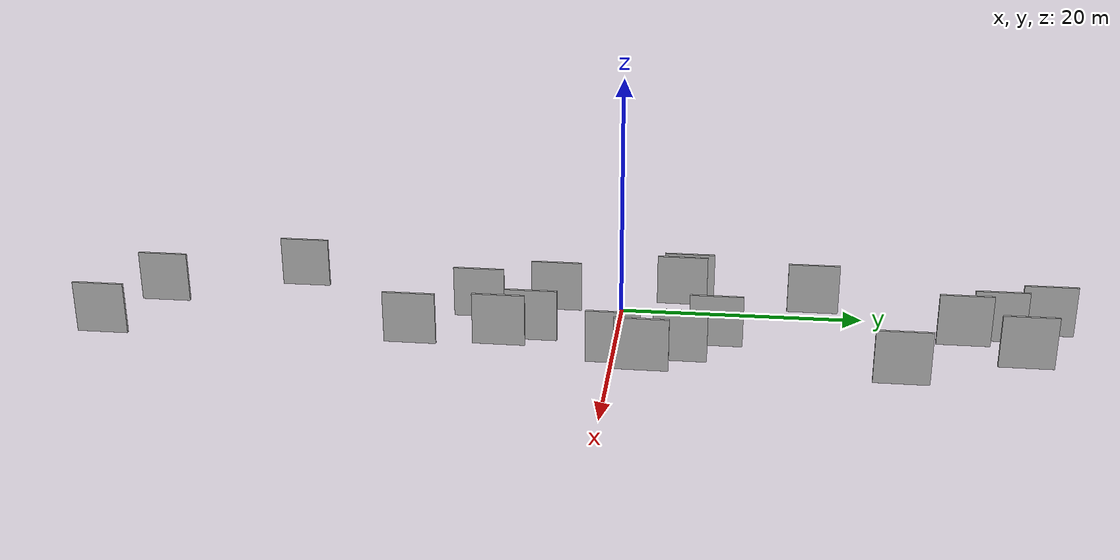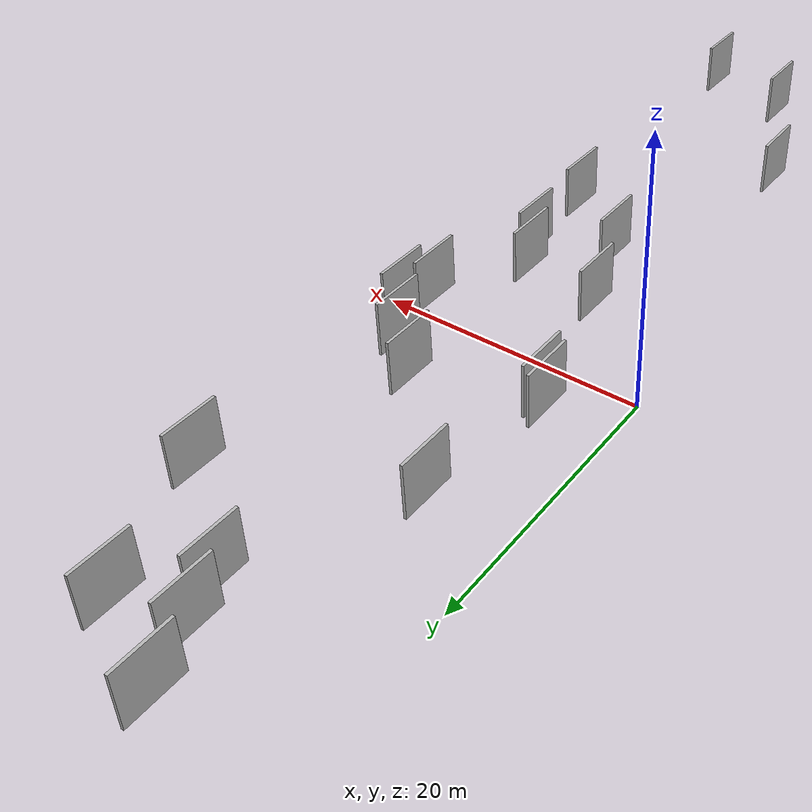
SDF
<sdf version="1.6">
 <world name="default">
  <scene>
   <sky><clouds><speed>12</speed></clouds></sky>
   <ambient>0.4 0.4 0.4 1</ambient>
   <background>0.7 0.7 0.7 1</background>
   <shadows>1</shadows>
  </scene>
  <gravity>0 0 -9.8066</gravity>
  <magnetic_field>6e-06 2.3e-05 -4.2e-05</magnetic_field>
  <physics default="0" name="default_physics" type="ode">
   <ode>
    <solver>
     <type>quick</type>
     <iters>10</iters>
     <sor>1.0</sor>
     <use_dynamic_moi_rescaling>0</use_dynamic_moi_rescaling>
    </solver>
    <constraints>
     <cfm>0</cfm>
     <erp>0.2</erp>
     <contact_max_correcting_vel>100</contact_max_correcting_vel>
     <contact_surface_layer>0.001</contact_surface_layer>
    </constraints>
   </ode>
   <max_step_size>0.004</max_step_size>
   <real_time_factor>1</real_time_factor>
   <real_time_update_rate>250</real_time_update_rate>
  </physics>
  <light name="sun" type="directional">
   <pose>0 0 10 0 0 0</pose>
   <diffuse>0.8 0.8 0.8 1</diffuse>
   <specular>0.2 0.2 0.2 1</specular>
   <attenuation>
    <range>1000</range>
    <constant>0.9</constant>
    <linear>0.01</linear>
    <quadratic>0.001</quadratic>
   </attenuation>
   <direction>-0.5 0.1 -0.9</direction>
  </light>
  <model name="grey_wall_1">
   <static>1</static>
   <pose>7.8780 -36.6778 2.5 0.000000 0.000000 1.570796</pose>
   <link name="link">
    <pose>0 0 2.00 0 0 0</pose>
    <collision name="collision"><geometry><box><size>4.00 0.2 4.00</size></box></geometry></collision>
    <visual name="visual">
     <cast_shadows>0</cast_shadows>
     <geometry><box><size>4.00 0.2 4.00</size></box></geometry>
     <material>
      <script>
       <uri>model://HANNAS_wall/materials/scripts</uri>
       <uri>model://HANNAS_wall/materials/textures</uri>
       <name>vrc/HANNAS_wall</name>
      </script>
     </material>
    </visual>
   </link>
  </model>
  <model name="grey_wall_2">
   <static>1</static>
   <pose>8.4785 29.3045 2.5 0.000000 0.000000 1.570796</pose>
   <link name="link">
    <pose>0 0 2.00 0 0 0</pose>
    <collision name="collision"><geometry><box><size>4.00 0.2 4.00</size></box></geometry></collision>
    <visual name="visual">
     <cast_shadows>0</cast_shadows>
     <geometry><box><size>4.00 0.2 4.00</size></box></geometry>
     <material>
      <script>
       <uri>model://HANNAS_wall/materials/scripts</uri>
       <uri>model://HANNAS_wall/materials/textures</uri>
       <name>vrc/HANNAS_wall</name>
      </script>
     </material>
    </visual>
   </link>
  </model>
  <model name="grey_wall_3">
   <static>1</static>
   <pose>3.3536 -26.2897 2.5 0.000000 0.000000 1.570796</pose>
   <link name="link">
    <pose>0 0 2.00 0 0 0</pose>
    <collision name="collision"><geometry><box><size>4.00 0.2 4.00</size></box></geometry></collision>
    <visual name="visual">
     <cast_shadows>0</cast_shadows>
     <geometry><box><size>4.00 0.2 4.00</size></box></geometry>
     <material>
      <script>
       <uri>model://HANNAS_wall/materials/scripts</uri>
       <uri>model://HANNAS_wall/materials/textures</uri>
       <name>vrc/HANNAS_wall</name>
      </script>
     </material>
    </visual>
   </link>
  </model>
  <model name="grey_wall_4">
   <static>1</static>
   <pose>14.6330 -38.9735 2.5 0.000000 0.000000 1.570796</pose>
   <link name="link">
    <pose>0 0 2.00 0 0 0</pose>
    <collision name="collision"><geometry><box><size>4.00 0.2 4.00</size></box></geometry></collision>
    <visual name="visual">
     <cast_shadows>0</cast_shadows>
     <geometry><box><size>4.00 0.2 4.00</size></box></geometry>
     <material>
      <script>
       <uri>model://HANNAS_wall/materials/scripts</uri>
       <uri>model://HANNAS_wall/materials/textures</uri>
       <name>vrc/HANNAS_wall</name>
      </script>
     </material>
    </visual>
   </link>
  </model>
  <model name="grey_wall_5">
   <static>1</static>
   <pose>9.5337 26.5299 2.5 0.000000 0.000000 1.570796</pose>
   <link name="link">
    <pose>0 0 2.00 0 0 0</pose>
    <collision name="collision"><geometry><box><size>4.00 0.2 4.00</size></box></geometry></collision>
    <visual name="visual">
     <cast_shadows>0</cast_shadows>
     <geometry><box><size>4.00 0.2 4.00</size></box></geometry>
     <material>
      <script>
       <uri>model://HANNAS_wall/materials/scripts</uri>
       <uri>model://HANNAS_wall/materials/textures</uri>
       <name>vrc/HANNAS_wall</name>
      </script>
     </material>
    </visual>
   </link>
  </model>
  <model name="grey_wall_6">
   <static>1</static>
   <pose>15.6037 0.5643 2.5 0.000000 0.000000 1.570796</pose>
   <link name="link">
    <pose>0 0 2.00 0 0 0</pose>
    <collision name="collision"><geometry><box><size>4.00 0.2 4.00</size></box></geometry></collision>
    <visual name="visual">
     <cast_shadows>0</cast_shadows>
     <geometry><box><size>4.00 0.2 4.00</size></box></geometry>
     <material>
      <script>
       <uri>model://HANNAS_wall/materials/scripts</uri>
       <uri>model://HANNAS_wall/materials/textures</uri>
       <name>vrc/HANNAS_wall</name>
      </script>
     </material>
    </visual>
   </link>
  </model>
  <model name="grey_wall_7">
   <static>1</static>
   <pose>14.7422 5.4125 2.5 0.000000 0.000000 1.570796</pose>
   <link name="link">
    <pose>0 0 2.00 0 0 0</pose>
    <collision name="collision"><geometry><box><size>4.00 0.2 4.00</size></box></geometry></collision>
    <visual name="visual">
     <cast_shadows>0</cast_shadows>
     <geometry><box><size>4.00 0.2 4.00</size></box></geometry>
     <material>
      <script>
       <uri>model://HANNAS_wall/materials/scripts</uri>
       <uri>model://HANNAS_wall/materials/textures</uri>
       <name>vrc/HANNAS_wall</name>
      </script>
     </material>
    </visual>
   </link>
  </model>
  <model name="grey_wall_8">
   <static>1</static>
   <pose>13.8355 -14.9823 2.5 0.000000 0.000000 1.570796</pose>
   <link name="link">
    <pose>0 0 2.00 0 0 0</pose>
    <collision name="collision"><geometry><box><size>4.00 0.2 4.00</size></box></geometry></collision>
    <visual name="visual">
     <cast_shadows>0</cast_shadows>
     <geometry><box><size>4.00 0.2 4.00</size></box></geometry>
     <material>
      <script>
       <uri>model://HANNAS_wall/materials/scripts</uri>
       <uri>model://HANNAS_wall/materials/textures</uri>
       <name>vrc/HANNAS_wall</name>
      </script>
     </material>
    </visual>
   </link>
  </model>
  <model name="grey_wall_9">
   <static>1</static>
   <pose>4.5063 15.5666 2.5 0.000000 0.000000 1.570796</pose>
   <link name="link">
    <pose>0 0 2.00 0 0 0</pose>
    <collision name="collision"><geometry><box><size>4.00 0.2 4.00</size></box></geometry></collision>
    <visual name="visual">
     <cast_shadows>0</cast_shadows>
     <geometry><box><size>4.00 0.2 4.00</size></box></geometry>
     <material>
      <script>
       <uri>model://HANNAS_wall/materials/scripts</uri>
       <uri>model://HANNAS_wall/materials/textures</uri>
       <name>vrc/HANNAS_wall</name>
      </script>
     </material>
    </visual>
   </link>
  </model>
  <model name="grey_wall_10">
   <static>1</static>
   <pose>13.3845 -8.2456 2.5 0.000000 0.000000 1.570796</pose>
   <link name="link">
    <pose>0 0 2.00 0 0 0</pose>
    <collision name="collision"><geometry><box><size>4.00 0.2 4.00</size></box></geometry></collision>
    <visual name="visual">
     <cast_shadows>0</cast_shadows>
     <geometry><box><size>4.00 0.2 4.00</size></box></geometry>
     <material>
      <script>
       <uri>model://HANNAS_wall/materials/scripts</uri>
       <uri>model://HANNAS_wall/materials/textures</uri>
       <name>vrc/HANNAS_wall</name>
      </script>
     </material>
    </visual>
   </link>
  </model>
  <model name="grey_wall_11">
   <static>1</static>
   <pose>8.2481 -10.6515 2.5 0.000000 0.000000 1.570796</pose>
   <link name="link">
    <pose>0 0 2.00 0 0 0</pose>
    <collision name="collision"><geometry><box><size>4.00 0.2 4.00</size></box></geometry></collision>
    <visual name="visual">
     <cast_shadows>0</cast_shadows>
     <geometry><box><size>4.00 0.2 4.00</size></box></geometry>
     <material>
      <script>
       <uri>model://HANNAS_wall/materials/scripts</uri>
       <uri>model://HANNAS_wall/materials/textures</uri>
       <name>vrc/HANNAS_wall</name>
      </script>
     </material>
    </visual>
   </link>
  </model>
  <model name="grey_wall_12">
   <static>1</static>
   <pose>6.9784 33.1511 2.5 0.000000 0.000000 1.570796</pose>
   <link name="link">
    <pose>0 0 2.00 0 0 0</pose>
    <collision name="collision"><geometry><box><size>4.00 0.2 4.00</size></box></geometry></collision>
    <visual name="visual">
     <cast_shadows>0</cast_shadows>
     <geometry><box><size>4.00 0.2 4.00</size></box></geometry>
     <material>
      <script>
       <uri>model://HANNAS_wall/materials/scripts</uri>
       <uri>model://HANNAS_wall/materials/textures</uri>
       <name>vrc/HANNAS_wall</name>
      </script>
     </material>
    </visual>
   </link>
  </model>
  <model name="grey_wall_13">
   <static>1</static>
   <pose>12.2420 -5.9573 2.5 0.000000 0.000000 1.570796</pose>
   <link name="link">
    <pose>0 0 2.00 0 0 0</pose>
    <collision name="collision"><geometry><box><size>4.00 0.2 4.00</size></box></geometry></collision>
    <visual name="visual">
     <cast_shadows>0</cast_shadows>
     <geometry><box><size>4.00 0.2 4.00</size></box></geometry>
     <material>
      <script>
       <uri>model://HANNAS_wall/materials/scripts</uri>
       <uri>model://HANNAS_wall/materials/textures</uri>
       <name>vrc/HANNAS_wall</name>
      </script>
     </material>
    </visual>
   </link>
  </model>
  <model name="grey_wall_14">
   <static>1</static>
   <pose>11.7514 8.0098 2.5 0.000000 0.000000 1.570796</pose>
   <link name="link">
    <pose>0 0 2.00 0 0 0</pose>
    <collision name="collision"><geometry><box><size>4.00 0.2 4.00</size></box></geometry></collision>
    <visual name="visual">
     <cast_shadows>0</cast_shadows>
     <geometry><box><size>4.00 0.2 4.00</size></box></geometry>
     <material>
      <script>
       <uri>model://HANNAS_wall/materials/scripts</uri>
       <uri>model://HANNAS_wall/materials/textures</uri>
       <name>vrc/HANNAS_wall</name>
      </script>
     </material>
    </visual>
   </link>
  </model>
  <model name="grey_wall_15">
   <static>1</static>
   <pose>16.7271 21.1465 2.5 0.000000 0.000000 1.570796</pose>
   <link name="link">
    <pose>0 0 2.00 0 0 0</pose>
    <collision name="collision"><geometry><box><size>4.00 0.2 4.00</size></box></geometry></collision>
    <visual name="visual">
     <cast_shadows>0</cast_shadows>
     <geometry><box><size>4.00 0.2 4.00</size></box></geometry>
     <material>
      <script>
       <uri>model://HANNAS_wall/materials/scripts</uri>
       <uri>model://HANNAS_wall/materials/textures</uri>
       <name>vrc/HANNAS_wall</name>
      </script>
     </material>
    </visual>
   </link>
  </model>
  <model name="grey_wall_16">
   <static>1</static>
   <pose>13.0646 30.4530 2.5 0.000000 0.000000 1.570796</pose>
   <link name="link">
    <pose>0 0 2.00 0 0 0</pose>
    <collision name="collision"><geometry><box><size>4.00 0.2 4.00</size></box></geometry></collision>
    <visual name="visual">
     <cast_shadows>0</cast_shadows>
     <geometry><box><size>4.00 0.2 4.00</size></box></geometry>
     <material>
      <script>
       <uri>model://HANNAS_wall/materials/scripts</uri>
       <uri>model://HANNAS_wall/materials/textures</uri>
       <name>vrc/HANNAS_wall</name>
      </script>
     </material>
    </visual>
   </link>
  </model>
  <model name="grey_wall_17">
   <static>1</static>
   <pose>3.1491 5.7228 2.5 0.000000 0.000000 1.570796</pose>
   <link name="link">
    <pose>0 0 2.00 0 0 0</pose>
    <collision name="collision"><geometry><box><size>4.00 0.2 4.00</size></box></geometry></collision>
    <visual name="visual">
     <cast_shadows>0</cast_shadows>
     <geometry><box><size>4.00 0.2 4.00</size></box></geometry>
     <material>
      <script>
       <uri>model://HANNAS_wall/materials/scripts</uri>
       <uri>model://HANNAS_wall/materials/textures</uri>
       <name>vrc/HANNAS_wall</name>
      </script>
     </material>
    </visual>
   </link>
  </model>
  <model name="grey_wall_18">
   <static>1</static>
   <pose>16.6024 2.6904 2.5 0.000000 0.000000 1.570796</pose>
   <link name="link">
    <pose>0 0 2.00 0 0 0</pose>
    <collision name="collision"><geometry><box><size>4.00 0.2 4.00</size></box></geometry></collision>
    <visual name="visual">
     <cast_shadows>0</cast_shadows>
     <geometry><box><size>4.00 0.2 4.00</size></box></geometry>
     <material>
      <script>
       <uri>model://HANNAS_wall/materials/scripts</uri>
       <uri>model://HANNAS_wall/materials/textures</uri>
       <name>vrc/HANNAS_wall</name>
      </script>
     </material>
    </visual>
   </link>
  </model>
  <model name="grey_wall_19">
   <static>1</static>
   <pose>3.8780 5.1756 2.5 0.000000 0.000000 1.570796</pose>
   <link name="link">
    <pose>0 0 2.00 0 0 0</pose>
    <collision name="collision"><geometry><box><size>4.00 0.2 4.00</size></box></geometry></collision>
    <visual name="visual">
     <cast_shadows>0</cast_shadows>
     <geometry><box><size>4.00 0.2 4.00</size></box></geometry>
     <material>
      <script>
       <uri>model://HANNAS_wall/materials/scripts</uri>
       <uri>model://HANNAS_wall/materials/textures</uri>
       <name>vrc/HANNAS_wall</name>
      </script>
     </material>
    </visual>
   </link>
  </model>
  <model name="grey_wall_20">
   <static>1</static>
   <pose>6.1938 -4.7537 2.5 0.000000 0.000000 1.570796</pose>
   <link name="link">
    <pose>0 0 2.00 0 0 0</pose>
    <collision name="collision"><geometry><box><size>4.00 0.2 4.00</size></box></geometry></collision>
    <visual name="visual">
     <cast_shadows>0</cast_shadows>
     <geometry><box><size>4.00 0.2 4.00</size></box></geometry>
     <material>
      <script>
       <uri>model://HANNAS_wall/materials/scripts</uri>
       <uri>model://HANNAS_wall/materials/textures</uri>
       <name>vrc/HANNAS_wall</name>
      </script>
     </material>
    </visual>
   </link>
  </model>
 </world>
</sdf>
